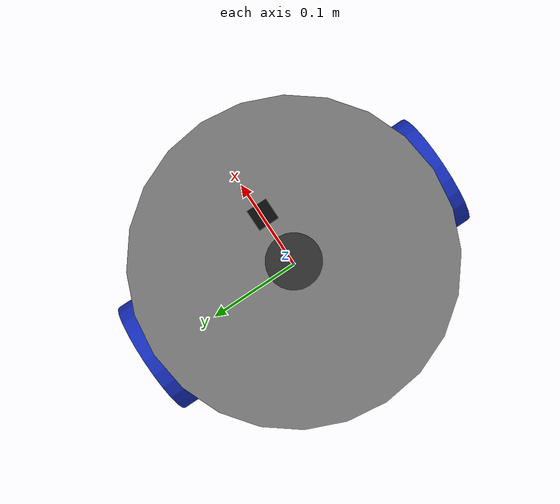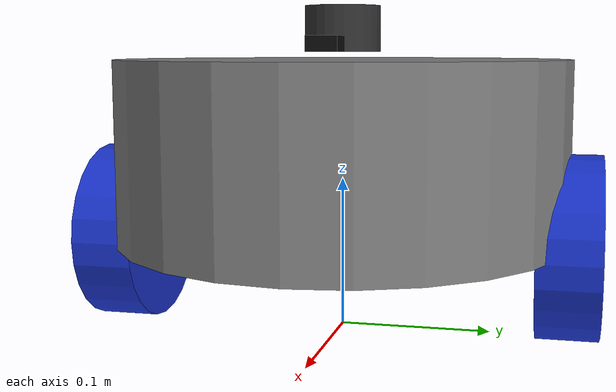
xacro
<?xml version="1.0"?>

<robot name="labbot" xmlns:xacro="http://ros.org/wiki/xacro">

  <!-- Start GZ or Ignition depending on ROS 2 Version -->
  <xacro:arg name="is_ignition" default="true"/>

  <!-- Load Simulated or Real Hardware Interfaces -->
  <xacro:arg name="is_sim" default="true"/>

  <!-- Include Gazebo Parameters -->
  <xacro:include filename="$(find robots)/labbot/urdf/labbot_gazebo.xacro" />

  <!-- Include ros2_control Plugins -->
  <xacro:include filename="$(find robots)/labbot/urdf/labbot_ros2_control.xacro" />

  <link name="base_footprint"/>

  <!-- Chassis: 0.30 m diameter drum, 0.12 m tall, centered 0.12 m above ground -->
  <link name="base_link">
    <inertial>
      <origin xyz="0 0 0" rpy="0 0 0"/>
      <mass value="4.0"/>
      <inertia ixx="2.73e-2" ixy="0" ixz="0" iyy="2.73e-2" iyz="0" izz="4.50e-2"/>
    </inertial>
    <visual>
      <origin xyz="0 0 0" rpy="0 0 0"/>
      <geometry>
        <cylinder radius="0.15" length="0.12"/>
      </geometry>
      <material name="labbot_grey"/>
    </visual>
    <collision>
      <origin xyz="0 0 0" rpy="0 0 0"/>
      <geometry>
        <cylinder radius="0.15" length="0.12"/>
      </geometry>
    </collision>
  </link>

  <joint name="base_joint" type="fixed">
    <parent link="base_footprint"/>
    <child link="base_link"/>
    <origin xyz="0 0 0.12" rpy="0 0 0"/>
  </joint>

  <!-- Drive wheels: radius 0.06 m, width 0.04 m, separation 0.30 m -->
  <link name="wheel_left_link">
    <inertial>
      <origin xyz="0 0 0" rpy="0 0 0"/>
      <mass value="0.2"/>
      <inertia ixx="2.07e-4" ixy="0" ixz="0" iyy="3.60e-4" iyz="0" izz="2.07e-4"/>
    </inertial>
    <visual>
      <origin xyz="0 0 0" rpy="1.5708 0 0"/>
      <geometry>
        <cylinder radius="0.06" length="0.04"/>
      </geometry>
      <material name="labbot_blue"/>
    </visual>
    <collision>
      <origin xyz="0 0 0" rpy="1.5708 0 0"/>
      <geometry>
        <cylinder radius="0.06" length="0.04"/>
      </geometry>
    </collision>
  </link>

  <joint name="labbot_left_wheel_joint" type="continuous">
    <parent link="base_link"/>
    <child link="wheel_left_link"/>
    <origin xyz="0 0.15 -0.06" rpy="0 0 0"/>
    <axis xyz="0 1 0"/>
  </joint>

  <link name="wheel_right_link">
    <inertial>
      <origin xyz="0 0 0" rpy="0 0 0"/>
      <mass value="0.2"/>
      <inertia ixx="2.07e-4" ixy="0" ixz="0" iyy="3.60e-4" iyz="0" izz="2.07e-4"/>
    </inertial>
    <visual>
      <origin xyz="0 0 0" rpy="1.5708 0 0"/>
      <geometry>
        <cylinder radius="0.06" length="0.04"/>
      </geometry>
      <material name="labbot_blue"/>
    </visual>
    <collision>
      <origin xyz="0 0 0" rpy="1.5708 0 0"/>
      <geometry>
        <cylinder radius="0.06" length="0.04"/>
      </geometry>
    </collision>
  </link>

  <joint name="labbot_right_wheel_joint" type="continuous">
    <parent link="base_link"/>
    <child link="wheel_right_link"/>
    <origin xyz="0 -0.15 -0.06" rpy="0 0 0"/>
    <axis xyz="0 1 0"/>
  </joint>

  <!-- Rear passive caster: sphere radius 0.03 m -->
  <link name="caster_rear_link">
    <inertial>
      <origin xyz="0 0 0" rpy="0 0 0"/>
      <mass value="0.05"/>
      <inertia ixx="1.8e-5" ixy="0" ixz="0" iyy="1.8e-5" iyz="0" izz="1.8e-5"/>
    </inertial>
    <visual>
      <origin xyz="0 0 0" rpy="0 0 0"/>
      <geometry>
        <sphere radius="0.03"/>
      </geometry>
      <material name="labbot_black"/>
    </visual>
    <collision>
      <origin xyz="0 0 0" rpy="0 0 0"/>
      <geometry>
        <sphere radius="0.03"/>
      </geometry>
    </collision>
  </link>

  <joint name="caster_rear_joint" type="fixed">
    <parent link="base_link"/>
    <child link="caster_rear_link"/>
    <origin xyz="-0.12 0 -0.09" rpy="0 0 0"/>
  </joint>

  <!-- IMU -->
  <link name="imu_link">
    <inertial>
      <origin xyz="0 0 0" rpy="0 0 0"/>
      <mass value="0.01"/>
      <inertia ixx="1e-6" ixy="0" ixz="0" iyy="1e-6" iyz="0" izz="1e-6"/>
    </inertial>
    <visual>
      <origin xyz="0 0 0" rpy="0 0 0"/>
      <geometry>
        <box size="0.02 0.02 0.01"/>
      </geometry>
      <material name="labbot_black"/>
    </visual>
    <collision>
      <origin xyz="0 0 0" rpy="0 0 0"/>
      <geometry>
        <box size="0.02 0.02 0.01"/>
      </geometry>
    </collision>
  </link>

  <joint name="imu_joint" type="fixed">
    <parent link="base_link"/>
    <child link="imu_link"/>
    <origin xyz="0.05 0 0.07" rpy="0 0 0"/>
  </joint>

  <!-- 2D LIDAR on top of the chassis -->
  <link name="laser_link">
    <inertial>
      <origin xyz="0 0 0" rpy="0 0 0"/>
      <mass value="0.05"/>
      <inertia ixx="1.16e-5" ixy="0" ixz="0" iyy="1.16e-5" iyz="0" izz="1.56e-5"/>
    </inertial>
    <visual>
      <origin xyz="0 0 0" rpy="0 0 0"/>
      <geometry>
        <cylinder radius="0.025" length="0.03"/>
      </geometry>
      <material name="labbot_dark"/>
    </visual>
    <collision>
      <origin xyz="0 0 0" rpy="0 0 0"/>
      <geometry>
        <cylinder radius="0.025" length="0.03"/>
      </geometry>
    </collision>
  </link>

  <joint name="laser_joint" type="fixed">
    <parent link="base_link"/>
    <child link="laser_link"/>
    <origin xyz="0 0 0.08" rpy="0 0 0"/>
  </joint>

  <material name="labbot_grey">
    <color rgba="0.5 0.5 0.5 1"/>
  </material>
  <material name="labbot_blue">
    <color rgba="0.1 0.2 0.8 1"/>
  </material>
  <material name="labbot_black">
    <color rgba="0.05 0.05 0.05 1"/>
  </material>
  <material name="labbot_dark">
    <color rgba="0.2 0.2 0.2 1"/>
  </material>

</robot>
